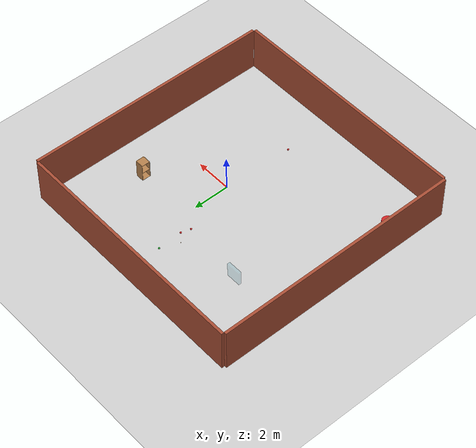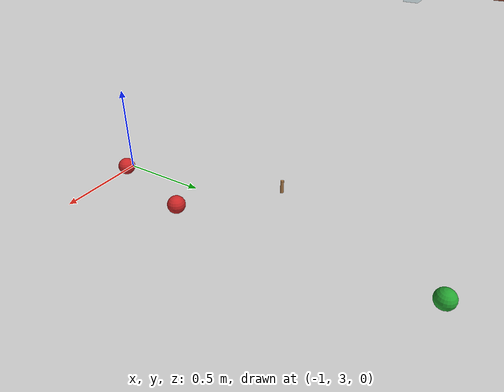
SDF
<sdf version="1.7">
 <world name="default">
  <model name="ground_plane">
   <static>1</static>
   <link name="link">
    <collision name="collision">
     <geometry><plane><normal>0 0 1</normal><size>100 100</size></plane></geometry>
     <surface>
      <contact><collide_bitmask>65535</collide_bitmask></contact>
      <friction><ode><mu>100</mu><mu2>50</mu2></ode></friction>
     </surface>
    </collision>
    <visual name="visual">
     <cast_shadows>0</cast_shadows>
     <geometry><plane><normal>0 0 1</normal><size>100 100</size></plane></geometry>
     <material>
      <script><uri>file://media/materials/scripts/gazebo.material</uri><name>Gazebo/Grey</name></script>
     </material>
    </visual>
   </link>
  </model>
  <gravity>0 0 -9.8</gravity>
  <magnetic_field>6e-06 2.3e-05 -4.2e-05</magnetic_field>
  <atmosphere type="adiabatic"/>
  <physics type="ode">
   <max_step_size>0.001</max_step_size>
   <real_time_factor>1</real_time_factor>
   <real_time_update_rate>1000</real_time_update_rate>
  </physics>
  <scene><ambient>0.4 0.4 0.4 1</ambient><background>0.7 0.7 0.7 1</background><shadows>1</shadows></scene>
  <audio><device>default</device></audio>
  <spherical_coordinates>
   <surface_model>EARTH_WGS84</surface_model>
   <latitude_deg>0</latitude_deg>
   <longitude_deg>0</longitude_deg>
   <elevation>0</elevation>
   <heading_deg>0</heading_deg>
  </spherical_coordinates>
  <model name="four_walls">
   <pose>0.25242 -0.01683 0 0 -0 0</pose>
   <static>1</static>
   <link name="Wall_4">
    <pose>-1.54097 7.13997 0 0 -0 0</pose>
    <collision name="Wall_4_Collision"><geometry><box><size>13.3867 0.15 2.5</size></box></geometry></collision>
    <visual name="Wall_4_Visual">
     <pose>0 0 1.25 0 -0 0</pose>
     <geometry><box><size>13.3867 0.15 2.5</size></box></geometry>
     <material>
      <script><uri>file://media/materials/scripts/gazebo.material</uri><name>Gazebo/Bricks</name></script>
     </material>
    </visual>
   </link>
   <link name="Wall_4_clone">
    <pose>-1.51314 -6.6153 0 0 -0 0</pose>
    <collision name="Wall_4_clone_Collision">
     <geometry><box><size>13.3867 0.15 2.5</size></box></geometry>
    </collision>
    <visual name="Wall_4_clone_Visual">
     <pose>0 0 1.25 0 -0 0</pose>
     <geometry><box><size>13.3867 0.15 2.5</size></box></geometry>
     <material>
      <script><uri>file://media/materials/scripts/gazebo.material</uri><name>Gazebo/Bricks</name></script>
     </material>
    </visual>
   </link>
   <link name="Wall_6">
    <pose>5.24615 0.292041 0 0 0 -1.5708</pose>
    <collision name="Wall_6_Collision"><geometry><box><size>13.6388 0.15 2.5</size></box></geometry></collision>
    <visual name="Wall_6_Visual">
     <pose>0 0 1.25 0 -0 0</pose>
     <geometry><box><size>13.6388 0.15 2.5</size></box></geometry>
     <material>
      <script><uri>file://media/materials/scripts/gazebo.material</uri><name>Gazebo/Bricks</name></script>
     </material>
    </visual>
   </link>
   <link name="Wall_6_clone">
    <pose>-8.28501 0.233544 0 0 0 -1.5708</pose>
    <collision name="Wall_6_clone_Collision">
     <geometry><box><size>13.6388 0.15 2.5</size></box></geometry>
    </collision>
    <visual name="Wall_6_clone_Visual">
     <pose>0 0 1.25 0 -0 0</pose>
     <geometry><box><size>13.6388 0.15 2.5</size></box></geometry>
     <material>
      <script><uri>file://media/materials/scripts/gazebo.material</uri><name>Gazebo/Bricks</name></script>
     </material>
    </visual>
   </link>
  </model>
  <model name="mobile_bot">
   <link name="base_link">
    <inertial>
     <pose>0.048 0 0.068 0 -0 0</pose>
     <mass>0.5</mass>
     <inertia>
      <ixx>0.00953633</ixx>
      <ixy>0</ixy>
      <ixz>0.001632</ixz>
      <iyy>0.0141443</iyy>
      <iyz>0</iyz>
      <izz>0.018333</izz>
     </inertia>
    </inertial>
    <collision name="base_link_fixed_joint_lump__round_body_collision">
     <pose>0 0 0.1 0 -0 0</pose>
     <geometry><cylinder><length>0.15</length><radius>0.3</radius></cylinder></geometry>
    </collision>
    <collision name="base_link_fixed_joint_lump__caster_wheel_collision_1">
     <pose>0.24 0 0 0 -0 0</pose>
     <geometry><sphere><radius>0.05</radius></sphere></geometry>
     <surface><friction><ode><mu>0.001</mu><mu2>0.001</mu2></ode></friction></surface>
    </collision>
    <collision name="base_link_fixed_joint_lump__lidar_link_collision_2">
     <pose>0 0 0.19 0 -0 0</pose>
     <geometry><cylinder><length>0.04</length><radius>0.05</radius></cylinder></geometry>
    </collision>
    <visual name="base_link_fixed_joint_lump__round_body_visual">
     <pose>0 0 0.1 0 -0 0</pose>
     <geometry><cylinder><length>0.15</length><radius>0.3</radius></cylinder></geometry>
     <material>
      <script><name>Gazebo/Red</name><uri>file://media/materials/scripts/gazebo.material</uri></script>
     </material>
    </visual>
    <visual name="base_link_fixed_joint_lump__camera_link_visual_1">
     <pose>0.3 0 0.07 0 -0 0</pose>
     <geometry><box><size>0.01 0.03 0.03</size></box></geometry>
     <material>
      <script><name>Gazebo/Green</name><uri>file://media/materials/scripts/gazebo.material</uri></script>
     </material>
    </visual>
    <visual name="base_link_fixed_joint_lump__caster_wheel_visual_2">
     <pose>0.24 0 0 0 -0 0</pose>
     <geometry><sphere><radius>0.05</radius></sphere></geometry>
     <material>
      <script><name>Gazebo/Blue</name><uri>file://media/materials/scripts/gazebo.material</uri></script>
     </material>
    </visual>
    <visual name="base_link_fixed_joint_lump__lidar_link_visual_3">
     <pose>0 0 0.19 0 -0 0</pose>
     <geometry><cylinder><length>0.04</length><radius>0.05</radius></cylinder></geometry>
     <material>
      <script><name>Gazebo/Green</name><uri>file://media/materials/scripts/gazebo.material</uri></script>
     </material>
    </visual>
    <sensor name="camera" type="camera">
     <visualize>1</visualize>
     <update_rate>10</update_rate>
     <camera>
      <horizontal_fov>1.5708</horizontal_fov>
      <image><format>R8G8B8</format><width>640</width><height>480</height></image>
      <clip><near>0.05</near><far>8</far></clip>
     </camera>
     <plugin name="camera_controller" filename="libgazebo_ros_camera.so">
      <frame_name>camera_link_optical</frame_name>
     </plugin>
     <pose>0.3 0 0.07 0 -0 0</pose>
    </sensor>
    <sensor name="laser" type="ray">
     <visualize>1</visualize>
     <update_rate>10</update_rate>
     <ray>
      <scan>
       <horizontal>
        <samples>180</samples>
        <min_angle>-0.7854</min_angle>
        <max_angle>0.7854</max_angle>
        <resolution>1</resolution>
       </horizontal>
       <vertical><samples>1</samples><min_angle>0</min_angle><max_angle>0</max_angle></vertical>
      </scan>
      <range><min>0.3</min><max>5</max></range>
     </ray>
     <plugin name="laser_controller" filename="libgazebo_ros_ray_sensor.so">
      <ros><argument>~/out:=scan</argument></ros>
      <output_type>sensor_msgs/LaserScan</output_type>
      <frame_name>lidar_link</frame_name>
     </plugin>
     <pose>0 0 0.19 0 -0 0</pose>
    </sensor>
   </link>
   <joint name="left_wheel_joint" type="revolute">
    <pose relative_to="base_link">-0.15 0.25 0 -1.57 0 0</pose>
    <parent>base_link</parent>
    <child>left_wheel</child>
    <axis>
     <xyz>0 0 1</xyz>
     <limit><lower>-1e+16</lower><upper>1e+16</upper></limit>
     <dynamics><spring_reference>0</spring_reference><spring_stiffness>0</spring_stiffness></dynamics>
    </axis>
   </joint>
   <link name="left_wheel">
    <pose relative_to="left_wheel_joint">0 0 0 0 -0 0</pose>
    <inertial>
     <mass>0.1</mass>
     <inertia>
      <ixx>8.33333e-05</ixx>
      <ixy>0</ixy>
      <ixz>0</ixz>
      <iyy>8.33333e-05</iyy>
      <iyz>0</iyz>
      <izz>0.000125</izz>
     </inertia>
    </inertial>
    <collision name="left_wheel_collision">
     <geometry><cylinder><length>0.04</length><radius>0.05</radius></cylinder></geometry>
    </collision>
    <visual name="left_wheel_visual">
     <geometry><cylinder><length>0.04</length><radius>0.05</radius></cylinder></geometry>
     <material>
      <script><name>Gazebo/Orange</name><uri>file://media/materials/scripts/gazebo.material</uri></script>
     </material>
    </visual>
   </link>
   <joint name="right_wheel_joint" type="revolute">
    <pose relative_to="base_link">-0.15 -0.25 0 1.57 -0 0</pose>
    <parent>base_link</parent>
    <child>right_wheel</child>
    <axis>
     <xyz>0 0 -1</xyz>
     <limit><lower>-1e+16</lower><upper>1e+16</upper></limit>
     <dynamics><spring_reference>0</spring_reference><spring_stiffness>0</spring_stiffness></dynamics>
    </axis>
   </joint>
   <link name="right_wheel">
    <pose relative_to="right_wheel_joint">0 0 0 0 -0 0</pose>
    <inertial>
     <mass>0.1</mass>
     <inertia>
      <ixx>8.33333e-05</ixx>
      <ixy>0</ixy>
      <ixz>0</ixz>
      <iyy>8.33333e-05</iyy>
      <iyz>0</iyz>
      <izz>0.000125</izz>
     </inertia>
    </inertial>
    <collision name="right_wheel_collision">
     <geometry><cylinder><length>0.04</length><radius>0.05</radius></cylinder></geometry>
    </collision>
    <visual name="right_wheel_visual">
     <geometry><cylinder><length>0.04</length><radius>0.05</radius></cylinder></geometry>
     <material>
      <script><name>Gazebo/Yellow</name><uri>file://media/materials/scripts/gazebo.material</uri></script>
     </material>
    </visual>
   </link>
   <static>0</static>
   <plugin name="diff_drive" filename="libgazebo_ros_diff_drive.so">
    <left_joint>left_wheel_joint</left_joint>
    <right_joint>right_wheel_joint</right_joint>
    <wheel_separation>0.50</wheel_separation>
    <wheel_diameter>0.1</wheel_diameter>
    <max_wheel_torque>200</max_wheel_torque>
    <max_wheel_acceleration>10.0</max_wheel_acceleration>
    <odometry_frame>odom</odometry_frame>
    <robot_base_frame>base_link</robot_base_frame>
    <publish_odom>1</publish_odom>
    <publish_odom_tf>1</publish_odom_tf>
    <publish_wheel_tf>1</publish_wheel_tf>
   </plugin>
   <pose>-6.79012 -4.26642 0.050008 -1e-05 3.2e-05 0.761777</pose>
  </model>
  <light name="sun" type="directional">
   <pose>-8.18183 0.580648 10 0 -0 0</pose>
   <diffuse>0.8 0.8 0.8 1</diffuse>
   <specular>0.2 0.2 0.2 1</specular>
   <attenuation>
    <range>1000</range>
    <constant>0.9</constant>
    <linear>0.01</linear>
    <quadratic>0.001</quadratic>
   </attenuation>
   <direction>-0.5 0.1 -0.9</direction>
   <spot><inner_angle>0</inner_angle><outer_angle>0</outer_angle><falloff>0</falloff></spot>
  </light>
  <model name="cabinet">
   <static>1</static>
   <link name="cabinet_bottom_plate">
    <inertial>
     <pose>0 0 -1 0 -0 0</pose>
     <inertia><ixx>2.05</ixx><ixy>0</ixy><ixz>0</ixz><iyy>2.05</iyy><iyz>0</iyz><izz>2.05</izz></inertia>
     <mass>25</mass>
    </inertial>
    <collision name="cabinet_bottom_plate_geom">
     <pose>0 0 0.01 0 -0 0</pose>
     <geometry><box><size>0.45 0.45 0.02</size></box></geometry>
    </collision>
    <visual name="cabinet_bottom_plate_geom_visual">
     <pose>0 0 0.01 0 -0 0</pose>
     <geometry><box><size>0.45 0.45 0.02</size></box></geometry>
     <material>
      <script><uri>file://media/materials/scripts/gazebo.material</uri><name>Gazebo/Wood</name></script>
     </material>
    </visual>
    <collision name="cabinet_bottom_plate_geom_cabinet_back_plate">
     <pose>0.235 0 0.51 0 -0 0</pose>
     <geometry><box><size>0.02 0.45 1.02</size></box></geometry>
    </collision>
    <visual name="cabinet_bottom_plate_geom_cabinet_back_plate_visual">
     <pose>0.235 0 0.51 0 -0 0</pose>
     <geometry><box><size>0.02 0.45 1.02</size></box></geometry>
     <material>
      <script><uri>file://media/materials/scripts/gazebo.material</uri><name>Gazebo/Wood</name></script>
     </material>
    </visual>
    <collision name="cabinet_bottom_plate_geom_cabinet_left_plate">
     <pose>0 0.235 0.51 0 -0 0</pose>
     <geometry><box><size>0.45 0.02 1.02</size></box></geometry>
    </collision>
    <visual name="cabinet_bottom_plate_geom_cabinet_left_plate_visual">
     <pose>0 0.235 0.51 0 -0 0</pose>
     <geometry><box><size>0.45 0.02 1.02</size></box></geometry>
     <material>
      <script><uri>file://media/materials/scripts/gazebo.material</uri><name>Gazebo/Wood</name></script>
     </material>
    </visual>
    <collision name="cabinet_bottom_plate_geom_cabinet_middle_plate">
     <pose>0 0 0.51 0 -0 0</pose>
     <geometry><box><size>0.45 0.45 0.02</size></box></geometry>
    </collision>
    <visual name="cabinet_bottom_plate_geom_cabinet_middle_plate_visual">
     <pose>0 0 0.51 0 -0 0</pose>
     <geometry><box><size>0.45 0.45 0.02</size></box></geometry>
     <material>
      <script><uri>file://media/materials/scripts/gazebo.material</uri><name>Gazebo/Wood</name></script>
     </material>
    </visual>
    <collision name="cabinet_bottom_plate_geom_cabinet_right_plate">
     <pose>0 -0.235 0.51 0 -0 0</pose>
     <geometry><box><size>0.45 0.02 1.02</size></box></geometry>
    </collision>
    <visual name="cabinet_bottom_plate_geom_cabinet_right_plate_visual">
     <pose>0 -0.235 0.51 0 -0 0</pose>
     <geometry><box><size>0.45 0.02 1.02</size></box></geometry>
     <material>
      <script><uri>file://media/materials/scripts/gazebo.material</uri><name>Gazebo/Wood</name></script>
     </material>
    </visual>
    <collision name="cabinet_bottom_plate_geom_cabinet_top_plate">
     <pose>0 0 1.01 0 -0 0</pose>
     <geometry><box><size>0.45 0.45 0.02</size></box></geometry>
    </collision>
    <visual name="cabinet_bottom_plate_geom_cabinet_top_plate_visual">
     <pose>0 0 1.01 0 -0 0</pose>
     <geometry><box><size>0.45 0.45 0.02</size></box></geometry>
     <material>
      <script><uri>file://media/materials/scripts/gazebo.material</uri><name>Gazebo/Wood</name></script>
     </material>
    </visual>
   </link>
   <pose>3.25178 2.55443 0 0 -0 0</pose>
  </model>
  <model name="green_ball">
   <link name="link">
    <inertial>
     <mass>1</mass>
     <inertia><ixx>0.1</ixx><ixy>0</ixy><ixz>0</ixz><iyy>0.1</iyy><iyz>0</iyz><izz>0.1</izz></inertia>
    </inertial>
    <visual name="visual">
     <geometry><sphere><radius>0.05</radius></sphere></geometry>
     <material>
      <script><name>Gazebo/Green</name><uri>file://media/materials/scripts/gazebo.material</uri></script>
      <shader type="pixel"><normal_map>__default__</normal_map></shader>
      <ambient>0 1 0 1</ambient>
      <diffuse>0 1 0 1</diffuse>
      <specular>0.1 0.1 0.1 1</specular>
      <emissive>0 0 0 1</emissive>
     </material>
    </visual>
    <collision name="collision">
     <geometry><sphere><radius>0.05</radius></sphere></geometry>
     <surface>
      <friction>
       <ode><mu>1</mu><mu2>1</mu2><fdir1>0 0 0</fdir1><slip1>0</slip1><slip2>0</slip2></ode>
       <torsional>
        <coefficient>1</coefficient>
        <patch_radius>0</patch_radius>
        <surface_radius>0</surface_radius>
        <use_patch_radius>1</use_patch_radius>
        <ode><slip>0</slip></ode>
       </torsional>
      </friction>
      <bounce><restitution_coefficient>0</restitution_coefficient><threshold>1e+06</threshold></bounce>
      <contact>
       <collide_without_contact>0</collide_without_contact>
       <collide_without_contact_bitmask>1</collide_without_contact_bitmask>
       <collide_bitmask>1</collide_bitmask>
       <ode>
        <soft_cfm>0</soft_cfm>
        <soft_erp>0.2</soft_erp>
        <kp>1e+13</kp>
        <kd>1</kd>
        <max_vel>0.01</max_vel>
        <min_depth>0</min_depth>
       </ode>
       <bullet>
        <split_impulse>1</split_impulse>
        <split_impulse_penetration_threshold>-0.01</split_impulse_penetration_threshold>
        <soft_cfm>0</soft_cfm>
        <soft_erp>0.2</soft_erp>
        <kp>1e+13</kp>
        <kd>1</kd>
       </bullet>
      </contact>
     </surface>
    </collision>
   </link>
   <static>0</static>
   <pose>-0.831729 4.93795 0.05 0 -0 0</pose>
  </model>
  <model name="red_ball">
   <link name="link">
    <inertial>
     <mass>1</mass>
     <inertia><ixx>0.1</ixx><ixy>0</ixy><ixz>0</ixz><iyy>0.1</iyy><iyz>0</iyz><izz>0.1</izz></inertia>
    </inertial>
    <visual name="visual">
     <geometry><sphere><radius>0.05</radius></sphere></geometry>
     <material>
      <script><name>Gazebo/Red</name><uri>file://media/materials/scripts/gazebo.material</uri></script>
      <shader type="pixel"><normal_map>__default__</normal_map></shader>
      <ambient>1 0 0 1</ambient>
      <diffuse>1 0 0 1</diffuse>
      <specular>0.1 0.1 0.1 1</specular>
      <emissive>0 0 0 1</emissive>
     </material>
    </visual>
    <collision name="collision">
     <geometry><sphere><radius>0.05</radius></sphere></geometry>
     <surface>
      <friction>
       <ode><mu>1</mu><mu2>1</mu2><fdir1>0 0 0</fdir1><slip1>0</slip1><slip2>0</slip2></ode>
       <torsional>
        <coefficient>1</coefficient>
        <patch_radius>0</patch_radius>
        <surface_radius>0</surface_radius>
        <use_patch_radius>1</use_patch_radius>
        <ode><slip>0</slip></ode>
       </torsional>
      </friction>
      <bounce><restitution_coefficient>0</restitution_coefficient><threshold>1e+06</threshold></bounce>
      <contact>
       <collide_without_contact>0</collide_without_contact>
       <collide_without_contact_bitmask>1</collide_without_contact_bitmask>
       <collide_bitmask>1</collide_bitmask>
       <ode>
        <soft_cfm>0</soft_cfm>
        <soft_erp>0.2</soft_erp>
        <kp>1e+13</kp>
        <kd>1</kd>
        <max_vel>0.01</max_vel>
        <min_depth>0</min_depth>
       </ode>
       <bullet>
        <split_impulse>1</split_impulse>
        <split_impulse_penetration_threshold>-0.01</split_impulse_penetration_threshold>
        <soft_cfm>0</soft_cfm>
        <soft_erp>0.2</soft_erp>
        <kp>1e+13</kp>
        <kd>1</kd>
       </bullet>
      </contact>
     </surface>
    </collision>
   </link>
   <static>0</static>
   <pose>-0.763544 3.55768 0.05 0 -0 0</pose>
  </model>
  <model name="transparent_window">
   <link name="link_2">
    <inertial>
     <mass>1</mass>
     <inertia><ixx>1</ixx><ixy>0</ixy><ixz>0</ixz><iyy>1</iyy><iyz>0</iyz><izz>1</izz></inertia>
    </inertial>
    <visual name="visual">
     <pose>0 0 0.9 0 -0 0</pose>
     <geometry><box><size>0.8 0.15 0.8</size></box></geometry>
     <material>
      <lighting>1</lighting>
      <ambient>0.1 0.5 0.6 1</ambient>
      <diffuse>0.1 0.5 0.6 1</diffuse>
      <specular>0.01 0.01 0.01 1</specular>
      <emissive>0 0 0 1</emissive>
      <shader type="pixel"><normal_map>__default__</normal_map></shader>
      <script><name>ModelPreview_7::link_2::visual_MATERIAL_</name><uri>__default__</uri></script>
     </material>
     <transparency>0.9</transparency>
    </visual>
    <collision name="collision">
     <pose>0 0 0.9 0 -0 0</pose>
     <geometry><box><size>0.8 0.15 0.8</size></box></geometry>
     <surface>
      <friction>
       <ode><mu>1</mu><mu2>1</mu2><fdir1>0 0 0</fdir1><slip1>0</slip1><slip2>0</slip2></ode>
       <torsional>
        <coefficient>1</coefficient>
        <patch_radius>0</patch_radius>
        <surface_radius>0</surface_radius>
        <use_patch_radius>1</use_patch_radius>
        <ode><slip>0</slip></ode>
       </torsional>
      </friction>
      <bounce><restitution_coefficient>0</restitution_coefficient><threshold>1e+06</threshold></bounce>
      <contact>
       <collide_without_contact>0</collide_without_contact>
       <collide_without_contact_bitmask>1</collide_without_contact_bitmask>
       <collide_bitmask>1</collide_bitmask>
       <ode>
        <soft_cfm>0</soft_cfm>
        <soft_erp>0.2</soft_erp>
        <kp>1e+13</kp>
        <kd>1</kd>
        <max_vel>0.01</max_vel>
        <min_depth>0</min_depth>
       </ode>
       <bullet>
        <split_impulse>1</split_impulse>
        <split_impulse_penetration_threshold>-0.01</split_impulse_penetration_threshold>
        <soft_cfm>0</soft_cfm>
        <soft_erp>0.2</soft_erp>
        <kp>1e+13</kp>
        <kd>1</kd>
       </bullet>
      </contact>
     </surface>
    </collision>
   </link>
   <static>1</static>
   <pose>-4.8294 3.71722 0 0 -0 0</pose>
  </model>
  <model name="white_ball">
   <link name="link">
    <inertial>
     <mass>1</mass>
     <inertia><ixx>0.1</ixx><ixy>0</ixy><ixz>0</ixz><iyy>0.1</iyy><iyz>0</iyz><izz>0.1</izz></inertia>
    </inertial>
    <visual name="visual">
     <geometry><sphere><radius>0.05</radius></sphere></geometry>
     <material>
      <script><name>Gazebo/Red</name><uri>file://media/materials/scripts/gazebo.material</uri></script>
      <shader type="pixel"><normal_map>__default__</normal_map></shader>
      <ambient>1 1 1 1</ambient>
      <diffuse>1 1 1 1</diffuse>
      <specular>0.1 0.1 0.1 1</specular>
      <emissive>0 0 0 1</emissive>
     </material>
    </visual>
    <collision name="collision">
     <geometry><sphere><radius>0.05</radius></sphere></geometry>
     <surface>
      <friction>
       <ode><mu>1</mu><mu2>1</mu2><fdir1>0 0 0</fdir1><slip1>0</slip1><slip2>0</slip2></ode>
       <torsional>
        <coefficient>1</coefficient>
        <patch_radius>0</patch_radius>
        <surface_radius>0</surface_radius>
        <use_patch_radius>1</use_patch_radius>
        <ode><slip>0</slip></ode>
       </torsional>
      </friction>
      <bounce><restitution_coefficient>0</restitution_coefficient><threshold>1e+06</threshold></bounce>
      <contact>
       <collide_without_contact>0</collide_without_contact>
       <collide_without_contact_bitmask>1</collide_without_contact_bitmask>
       <collide_bitmask>1</collide_bitmask>
       <ode>
        <soft_cfm>0</soft_cfm>
        <soft_erp>0.2</soft_erp>
        <kp>1e+13</kp>
        <kd>1</kd>
        <max_vel>0.01</max_vel>
        <min_depth>0</min_depth>
       </ode>
       <bullet>
        <split_impulse>1</split_impulse>
        <split_impulse_penetration_threshold>-0.01</split_impulse_penetration_threshold>
        <soft_cfm>0</soft_cfm>
        <soft_erp>0.2</soft_erp>
        <kp>1e+13</kp>
        <kd>1</kd>
       </bullet>
      </contact>
     </surface>
    </collision>
   </link>
   <static>0</static>
   <pose>-0.145543 -3.90287 0.05 0 -0 0</pose>
  </model>
  <model name="wooden_peg">
   <link name="link">
    <pose>0 0 0.04 0 -0 0</pose>
    <inertial>
     <mass>0.0175</mass>
     <inertia>
      <ixx>9.74923e-06</ixx>
      <ixy>0</ixy>
      <ixz>0</ixz>
      <iyy>9.74923e-06</iyy>
      <iyz>0</iyz>
      <izz>8.31797e-07</izz>
     </inertia>
    </inertial>
    <collision name="collision">
     <geometry><cylinder><radius>0.00975</radius><length>0.08</length></cylinder></geometry>
     <surface>
      <contact>
       <poissons_ratio>0.347</poissons_ratio>
       <elastic_modulus>8.8e+09</elastic_modulus>
       <ode><kp>100000</kp><kd>100</kd><max_vel>100</max_vel><min_depth>0.001</min_depth></ode>
      </contact>
      <friction>
       <torsional>
        <coefficient>1</coefficient>
        <use_patch_radius>0</use_patch_radius>
        <surface_radius>0.01</surface_radius>
       </torsional>
      </friction>
     </surface>
    </collision>
    <visual name="visual">
     <geometry><cylinder><radius>0.00975</radius><length>0.08</length></cylinder></geometry>
     <material>
      <script><uri>file://media/materials/scripts/gazebo.material</uri><name>Gazebo/Wood</name></script>
     </material>
    </visual>
   </link>
   <pose>-1.23415 3.94882 -0.000859 7.2e-05 -8.2e-05 0</pose>
  </model>
  <model name="yellow_ball">
   <link name="link">
    <inertial>
     <mass>1</mass>
     <inertia><ixx>0.1</ixx><ixy>0</ixy><ixz>0</ixz><iyy>0.1</iyy><iyz>0</iyz><izz>0.1</izz></inertia>
    </inertial>
    <visual name="visual">
     <geometry><sphere><radius>0.05</radius></sphere></geometry>
     <material>
      <script><name>Gazebo/Red</name><uri>file://media/materials/scripts/gazebo.material</uri></script>
      <shader type="pixel"><normal_map>__default__</normal_map></shader>
      <ambient>1 1 0 1</ambient>
      <diffuse>1 1 0 1</diffuse>
      <specular>0.1 0.1 0.1 1</specular>
      <emissive>0 0 0 1</emissive>
     </material>
    </visual>
    <collision name="collision">
     <geometry><sphere><radius>0.05</radius></sphere></geometry>
     <surface>
      <friction>
       <ode><mu>1</mu><mu2>1</mu2><fdir1>0 0 0</fdir1><slip1>0</slip1><slip2>0</slip2></ode>
       <torsional>
        <coefficient>1</coefficient>
        <patch_radius>0</patch_radius>
        <surface_radius>0</surface_radius>
        <use_patch_radius>1</use_patch_radius>
        <ode><slip>0</slip></ode>
       </torsional>
      </friction>
      <bounce><restitution_coefficient>0</restitution_coefficient><threshold>1e+06</threshold></bounce>
      <contact>
       <collide_without_contact>0</collide_without_contact>
       <collide_without_contact_bitmask>1</collide_without_contact_bitmask>
       <collide_bitmask>1</collide_bitmask>
       <ode>
        <soft_cfm>0</soft_cfm>
        <soft_erp>0.2</soft_erp>
        <kp>1e+13</kp>
        <kd>1</kd>
        <max_vel>0.01</max_vel>
        <min_depth>0</min_depth>
       </ode>
       <bullet>
        <split_impulse>1</split_impulse>
        <split_impulse_penetration_threshold>-0.01</split_impulse_penetration_threshold>
        <soft_cfm>0</soft_cfm>
        <soft_erp>0.2</soft_erp>
        <kp>1e+13</kp>
        <kd>1</kd>
       </bullet>
      </contact>
     </surface>
    </collision>
   </link>
   <static>0</static>
   <pose>-0.917936 3.03501 0.05 0 -0 0</pose>
  </model>
 </world>
</sdf>
